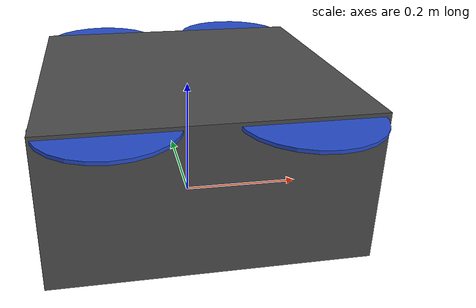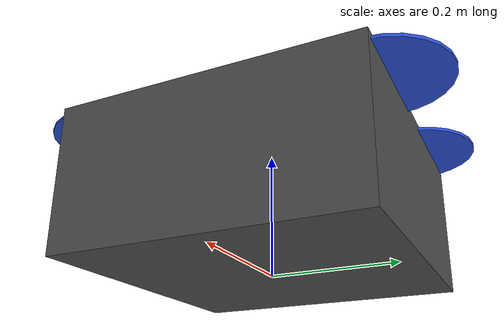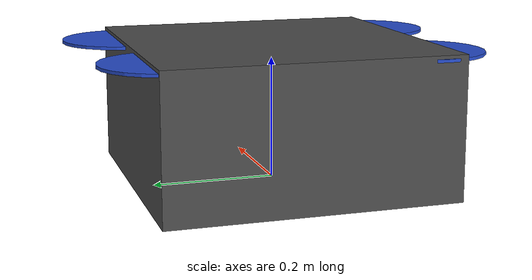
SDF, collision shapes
<?xml version='1.0'?>
<sdf version="1.6">
  <model name="iris_quadrotor_with_plugin">
    <include>
      <uri>model://iris_quadrotor</uri>
    </include>

    <!-- plugins -->
    <plugin name="rotor_0_blade_1" filename="libLiftDragPlugin.so">
      <a0>0.3</a0>
      <alpha_stall>1.4</alpha_stall>
      <cla>4.2500</cla>
      <cda>0.10</cda>
      <cma>0.00</cma>
      <cla_stall>-0.025</cla_stall>
      <cda_stall>0.0</cda_stall>
      <cma_stall>0.0</cma_stall>
      <area>0.002</area>
      <air_density>1.2041</air_density>
      <cp>0.084 0 0</cp>
      <forward>0 1 0</forward>
      <upward>0 0 1</upward>
      <link_name>iris_quadrotor::rotor_0</link_name>
    </plugin>
    <plugin name="rotor_0_blade_2" filename="libLiftDragPlugin.so">
      <a0>0.3</a0>
      <alpha_stall>1.4</alpha_stall>
      <cla>4.2500</cla>
      <cda>0.10</cda>
      <cma>0.00</cma>
      <cla_stall>-0.025</cla_stall>
      <cda_stall>0.0</cda_stall>
      <cma_stall>0.0</cma_stall>
      <area>0.002</area>
      <air_density>1.2041</air_density>
      <cp>-0.084 0 0</cp>
      <forward>0 -1 0</forward>
      <upward>0 0 1</upward>
      <link_name>iris_quadrotor::rotor_0</link_name>
    </plugin>
    <plugin name="rotor_1_blade_1" filename="libLiftDragPlugin.so">
      <a0>0.3</a0>
      <alpha_stall>1.4</alpha_stall>
      <cla>4.2500</cla>
      <cda>0.10</cda>
      <cma>0.00</cma>
      <cla_stall>-0.025</cla_stall>
      <cda_stall>0.0</cda_stall>
      <cma_stall>0.0</cma_stall>
      <area>0.002</area>
      <air_density>1.2041</air_density>
      <cp>0.084 0 0</cp>
      <forward>0 1 0</forward>
      <upward>0 0 1</upward>
      <link_name>iris_quadrotor::rotor_1</link_name>
    </plugin>
    <plugin name="rotor_1_blade_2" filename="libLiftDragPlugin.so">
      <a0>0.3</a0>
      <alpha_stall>1.4</alpha_stall>
      <cla>4.2500</cla>
      <cda>0.10</cda>
      <cma>0.00</cma>
      <cla_stall>-0.025</cla_stall>
      <cda_stall>0.0</cda_stall>
      <cma_stall>0.0</cma_stall>
      <area>0.002</area>
      <air_density>1.2041</air_density>
      <cp>-0.084 0 0</cp>
      <forward>0 -1 0</forward>
      <upward>0 0 1</upward>
      <link_name>iris_quadrotor::rotor_1</link_name>
    </plugin>
    <plugin name="rotor_2_blade_1" filename="libLiftDragPlugin.so">
      <a0>0.3</a0>
      <alpha_stall>1.4</alpha_stall>
      <cla>4.2500</cla>
      <cda>0.10</cda>
      <cma>0.00</cma>
      <cla_stall>-0.025</cla_stall>
      <cda_stall>0.0</cda_stall>
      <cma_stall>0.0</cma_stall>
      <area>0.002</area>
      <air_density>1.2041</air_density>
      <cp>0.084 0 0</cp>
      <forward>0 -1 0</forward>
      <upward>0 0 1</upward>
      <link_name>iris_quadrotor::rotor_2</link_name>
    </plugin>
    <plugin name="rotor_2_blade_2" filename="libLiftDragPlugin.so">
      <a0>0.3</a0>
      <alpha_stall>1.4</alpha_stall>
      <cla>4.2500</cla>
      <cda>0.10</cda>
      <cma>0.00</cma>
      <cla_stall>-0.025</cla_stall>
      <cda_stall>0.0</cda_stall>
      <cma_stall>0.0</cma_stall>
      <area>0.002</area>
      <air_density>1.2041</air_density>
      <cp>-0.084 0 0</cp>
      <forward>0 1 0</forward>
      <upward>0 0 1</upward>
      <link_name>iris_quadrotor::rotor_2</link_name>
    </plugin>
    <plugin name="rotor_3_blade_1" filename="libLiftDragPlugin.so">
      <a0>0.3</a0>
      <alpha_stall>1.4</alpha_stall>
      <cla>4.2500</cla>
      <cda>0.10</cda>
      <cma>0.00</cma>
      <cla_stall>-0.025</cla_stall>
      <cda_stall>0.0</cda_stall>
      <cma_stall>0.0</cma_stall>
      <area>0.002</area>
      <air_density>1.2041</air_density>
      <cp>0.084 0 0</cp>
      <forward>0 -1 0</forward>
      <upward>0 0 1</upward>
      <link_name>iris_quadrotor::rotor_3</link_name>
    </plugin>
    <plugin name="rotor_3_blade_2" filename="libLiftDragPlugin.so">
      <a0>0.3</a0>
      <alpha_stall>1.4</alpha_stall>
      <cla>4.2500</cla>
      <cda>0.10</cda>
      <cma>0.00</cma>
      <cla_stall>-0.025</cla_stall>
      <cda_stall>0.0</cda_stall>
      <cma_stall>0.0</cma_stall>
      <area>0.002</area>
      <air_density>1.2041</air_density>
      <cp>-0.084 0 0</cp>
      <forward>0 1 0</forward>
      <upward>0 0 1</upward>
      <link_name>iris_quadrotor::rotor_3</link_name>
    </plugin>
    <plugin name="iris_controller" filename="libiris_controller.so">
      <rotor id="0">
        <vel_p_gain>0.1</vel_p_gain>
        <vel_i_gain>0</vel_i_gain>
        <vel_d_gain>0</vel_d_gain>
        <vel_i_max>0</vel_i_max>
        <vel_i_min>0</vel_i_min>
        <vel_cmd_max>3.0</vel_cmd_max>
        <vel_cmd_min>-3.0</vel_cmd_min>
        <jointName>iris_quadrotor::rotor_0_joint</jointName>
        <turningDirection>ccw</turningDirection>
        <rotorVelocitySlowdownSim>1</rotorVelocitySlowdownSim>
      </rotor>
      <rotor id="1">
        <vel_p_gain>0.1</vel_p_gain>
        <vel_i_gain>0</vel_i_gain>
        <vel_d_gain>0</vel_d_gain>
        <vel_i_max>0</vel_i_max>
        <vel_i_min>0</vel_i_min>
        <vel_cmd_max>3.0</vel_cmd_max>
        <vel_cmd_min>-3.0</vel_cmd_min>
        <jointName>iris_quadrotor::rotor_1_joint</jointName>
        <turningDirection>ccw</turningDirection>
        <rotorVelocitySlowdownSim>1</rotorVelocitySlowdownSim>
      </rotor>
      <rotor id="2">
        <vel_p_gain>0.1</vel_p_gain>
        <vel_i_gain>0</vel_i_gain>
        <vel_d_gain>0</vel_d_gain>
        <vel_i_max>0</vel_i_max>
        <vel_i_min>0</vel_i_min>
        <vel_cmd_max>3.0</vel_cmd_max>
        <vel_cmd_min>-3.0</vel_cmd_min>
        <jointName>iris_quadrotor::rotor_2_joint</jointName>
        <turningDirection>cw</turningDirection>
        <rotorVelocitySlowdownSim>1</rotorVelocitySlowdownSim>
      </rotor>
      <rotor id="3">
        <vel_p_gain>0.1</vel_p_gain>
        <vel_i_gain>0</vel_i_gain>
        <vel_d_gain>0</vel_d_gain>
        <vel_i_max>0</vel_i_max>
        <vel_i_min>0</vel_i_min>
        <vel_cmd_max>3.0</vel_cmd_max>
        <vel_cmd_min>-3.0</vel_cmd_min>
        <jointName>iris_quadrotor::rotor_3_joint</jointName>
        <turningDirection>cw</turningDirection>
        <rotorVelocitySlowdownSim>1</rotorVelocitySlowdownSim>
      </rotor>
      <!-- the pose publish cycle in miliseconds -->
      <!-- if 100, publishes pose every 100 miliseconds -->
      <!-- value must be int -->
      <poseUpdateRate>10</poseUpdateRate>
      <uav_sensor>
        <update_rate>10</update_rate>
        <hfov>0.5</hfov>
        <aspect_ratio>1.3333</aspect_ratio>
        <max_height>1000</max_height>
        <min_height>10</min_height>
        <far>1000</far>
        <near>0.1</near>
      </uav_sensor>
      <battery>
        <capacity>1000</capacity>
        <force_factor>0.0003</force_factor>
        <!-- determines how often remaining battery is going to be published -->
        <!-- every publish_rate millisecond -->
        <publish_rate>1000</publish_rate>
      </battery>
    </plugin>
  </model>
</sdf>

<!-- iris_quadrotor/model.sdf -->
<sdf version='1.5'>
  <model name='iris_quadrotor'>
    <pose>0 0 0.194923 0 0 0</pose>
    <link name='base_link'>
      <velocity_decay>
        <linear>0.0</linear>
        <angular>0.0</angular>
      </velocity_decay>
      <inertial>
        <pose>0 0 0 0 0 0</pose>
        <mass>1.5</mass>
        <inertia>
          <ixx>0.008</ixx>
          <ixy>0</ixy>
          <ixz>0</ixz>
          <iyy>0.015</iyy>
          <iyz>0</iyz>
          <izz>0.017</izz>
        </inertia>
      </inertial>
      <collision name='base_link_collision'>
        <pose>0 0 -0.08 0 0 0</pose>
        <geometry>
          <box>
            <size>0.47 0.47 0.23</size>
          </box>
        </geometry>
        <surface>
          <contact>
            <ode>
              <max_vel>100.0</max_vel>
              <min_depth>0.001</min_depth>
            </ode>
          </contact>
          <friction>
            <ode>
              <mu>1.0</mu>
              <mu2>1.0</mu2>
            </ode>
          </friction>
        </surface>
      </collision>
      <visual name='base_link_visual'>
        <geometry>
          <mesh>
            <uri>model://iris_quadrotor/meshes/iris.dae</uri>
          </mesh>
        </geometry>
        <material>
          <script>
            <name>Gazebo/DarkGrey</name>
          </script>
        </material>
      </visual>

      <visual name='front_left_leg_visual'>
        <pose>0.123 0.22 -0.11 0 0 0</pose>
        <geometry>
          <cylinder>
            <radius>0.005</radius>
            <length>0.17</length>
          </cylinder>
        </geometry>
        <material>
          <script>
            <name>Gazebo/FlatBlack</name>
            <uri>file://media/materials/scripts/gazebo.material</uri>
          </script>
        </material>
      </visual>
      <visual name='front_right_leg_visual'>
        <pose>0.123 -0.22 -0.11 0 0 0</pose>
        <geometry>
          <cylinder>
            <radius>0.005</radius>
            <length>0.17</length>
          </cylinder>
        </geometry>
        <material>
          <script>
            <name>Gazebo/FlatBlack</name>
            <uri>file://media/materials/scripts/gazebo.material</uri>
          </script>
        </material>
      </visual>
      <visual name='rear_left_leg_visual'>
        <pose>-0.140 0.21 -0.11 0 0 0</pose>
        <geometry>
          <cylinder>
            <radius>0.005</radius>
            <length>0.17</length>
          </cylinder>
        </geometry>
        <material>
          <script>
            <name>Gazebo/FlatBlack</name>
            <uri>file://media/materials/scripts/gazebo.material</uri>
          </script>
        </material>
      </visual>
      <visual name='rear_right_leg_visual'>
        <pose>-0.140 -0.21 -0.11 0 0 0</pose>
        <geometry>
          <cylinder>
            <radius>0.005</radius>
            <length>0.17</length>
          </cylinder>
        </geometry>
        <material>
          <script>
            <name>Gazebo/FlatBlack</name>
            <uri>file://media/materials/scripts/gazebo.material</uri>
          </script>
        </material>
      </visual>
      <sensor name="bottom_cam" type="camera">
        <pose>0 0 0 0 1.5707 -1.5707</pose>
        <camera>
          <horizontal_fov>0.5</horizontal_fov>
          <image>
            <width>800</width>
            <height>600</height>
          </image>
          <clip>
            <near>0.1</near>
            <far>100</far>
          </clip>
        </camera>
        <always_on>false</always_on>
        <update_rate>10</update_rate>
        <visualize>false</visualize>
      </sensor>
      <sensor name="bottom_cam_logical" type="logical_camera">
        <pose>0 0 0 0 1.5707 -1.5707</pose>
        <logical_camera>
          <near>0.1</near>
          <far>500</far>
          <horizontal_fov>0.5</horizontal_fov>
          <aspect_ratio>1.3333</aspect_ratio>
        </logical_camera>
        <always_on>false</always_on>
        <update_rate>10</update_rate>
        <visualize>true</visualize>
      </sensor>
    </link>
    <link name='rotor_0'>
      <pose>0.1295 -0.2185 0.027 0 -0 0</pose>
      <inertial>
        <pose>-0.0045 -0.0005 0 0 0 0</pose>
        <mass>0.025</mass>
        <inertia>
          <ixx>9.75e-06</ixx>
          <ixy>0</ixy>
          <ixz>0</ixz>
          <iyy>0.000166704</iyy>
          <iyz>0</iyz>
          <izz>0.000167604</izz>
        </inertia>
      </inertial>
      <collision name='rotor_0_collision'>
        <pose>0 0 0 0 -0 0</pose>
        <geometry>
          <cylinder>
            <length>0.005</length>
            <radius>0.1</radius>
          </cylinder>
        </geometry>
        <surface>
          <contact>
            <ode/>
          </contact>
          <friction>
            <ode/>
          </friction>
        </surface>
      </collision>
      <visual name='rotor_0_visual'>
        <pose>0 0 0 0 -0 0</pose>
        <geometry>
          <mesh>
            <scale>1 1 1</scale>
            <uri>model://iris_quadrotor/meshes/iris_prop_ccw.dae</uri>
          </mesh>
        </geometry>
        <material>
          <script>
            <name>Gazebo/Blue</name>
            <uri>__default__</uri>
          </script>
        </material>
      </visual>
      <gravity>1</gravity>
      <velocity_decay/>
      <self_collide>0</self_collide>
    </link>
    <joint name='rotor_0_joint' type='revolute'>
      <child>rotor_0</child>
      <parent>base_link</parent>
      <pose>-0.0045 -0.0005 0 0 0 0</pose>
      <axis>
        <xyz>0 0 1</xyz>
        <limit>
          <lower>-1e+16</lower>
          <upper>1e+16</upper>
        </limit>
        <dynamics>
          <damping>0.004</damping>
        </dynamics>
        <use_parent_model_frame>1</use_parent_model_frame>
      </axis>
      <physics>
        <ode>
          <implicit_spring_damper>1</implicit_spring_damper>
        </ode>
      </physics>
    </joint>
    <link name='rotor_1'>
      <pose>-0.134 0.2065 0.027 0 -0 0</pose>
      <inertial>
        <pose>-0.0045 -0.0001 0 0 0 0</pose>
        <mass>0.025</mass>
        <inertia>
          <ixx>9.75e-06</ixx>
          <ixy>0</ixy>
          <ixz>0</ixz>
          <iyy>0.000166704</iyy>
          <iyz>0</iyz>
          <izz>0.000167604</izz>
        </inertia>
      </inertial>
      <collision name='rotor_1_collision'>
        <pose>0 0 0 0 -0 0</pose>
        <geometry>
          <cylinder>
            <length>0.005</length>
            <radius>0.1</radius>
          </cylinder>
        </geometry>
        <surface>
          <contact>
            <ode/>
          </contact>
          <friction>
            <ode/>
          </friction>
        </surface>
      </collision>
      <visual name='rotor_1_visual'>
        <pose>0 0 0 0 -0 0</pose>
        <geometry>
          <mesh>
            <scale>1 1 1</scale>
            <uri>model://iris_quadrotor/meshes/iris_prop_ccw.dae</uri>
          </mesh>
        </geometry>
        <material>
          <script>
            <name>Gazebo/Blue</name>
            <uri>__default__</uri>
          </script>
        </material>
      </visual>
      <gravity>1</gravity>
      <velocity_decay/>
      <self_collide>0</self_collide>
    </link>
    <joint name='rotor_1_joint' type='revolute'>
      <child>rotor_1</child>
      <parent>base_link</parent>
      <pose>-0.0045 -0.0001 0 0 0 0</pose>
      <axis>
        <xyz>0 0 1</xyz>
        <limit>
          <lower>-1e+16</lower>
          <upper>1e+16</upper>
        </limit>
        <dynamics>
          <damping>0.004</damping>
        </dynamics>
        <use_parent_model_frame>1</use_parent_model_frame>
      </axis>
      <physics>
        <ode>
          <implicit_spring_damper>1</implicit_spring_damper>
        </ode>
      </physics>
    </joint>
    <link name='rotor_2'>
      <pose>0.1255 0.2223 0.027 0 -0 0</pose>
      <inertial>
        <pose>-0.0004 0.0002 0 0 0 0</pose>
        <mass>0.025</mass>
        <inertia>
          <ixx>9.75e-06</ixx>
          <ixy>0</ixy>
          <ixz>0</ixz>
          <iyy>0.000166704</iyy>
          <iyz>0</iyz>
          <izz>0.000167604</izz>
        </inertia>
      </inertial>
      <collision name='rotor_2_collision'>
        <pose>0 0 0 0 -0 0</pose>
        <geometry>
          <cylinder>
            <length>0.005</length>
            <radius>0.1</radius>
          </cylinder>
        </geometry>
        <surface>
          <contact>
            <ode/>
          </contact>
          <friction>
            <ode/>
          </friction>
        </surface>
      </collision>
      <visual name='rotor_2_visual'>
        <pose>0 0 0 0 -0 0</pose>
        <geometry>
          <mesh>
            <scale>1 1 1</scale>
            <uri>model://iris_quadrotor/meshes/iris_prop_cw.dae</uri>
          </mesh>
        </geometry>
        <material>
          <script>
            <name>Gazebo/Blue</name>
            <uri>__default__</uri>
          </script>
        </material>
      </visual>
      <gravity>1</gravity>
      <velocity_decay/>
      <self_collide>0</self_collide>
    </link>
    <joint name='rotor_2_joint' type='revolute'>
      <child>rotor_2</child>
      <parent>base_link</parent>
      <pose>-0.0004 0.0002 0 0 0 0</pose>
      <axis>
        <xyz>0 0 1</xyz>
        <limit>
          <lower>-1e+16</lower>
          <upper>1e+16</upper>
        </limit>
        <dynamics>
          <damping>0.004</damping>
        </dynamics>
        <use_parent_model_frame>1</use_parent_model_frame>
      </axis>
      <physics>
        <ode>
          <implicit_spring_damper>1</implicit_spring_damper>
        </ode>
      </physics>
    </joint>
    <link name='rotor_3'>
      <pose>-0.1375 -0.2025 0.027 0 -0 0</pose>
      <inertial>
        <pose>-0.001 0 0 0 0 0</pose>
        <mass>0.025</mass>
        <inertia>
          <ixx>9.75e-06</ixx>
          <ixy>0</ixy>
          <ixz>0</ixz>
          <iyy>0.000166704</iyy>
          <iyz>0</iyz>
          <izz>0.000167604</izz>
        </inertia>
      </inertial>
      <collision name='rotor_3_collision'>
        <pose>0 0 0 0 -0 0</pose>
        <geometry>
          <cylinder>
            <length>0.005</length>
            <radius>0.1</radius>
          </cylinder>
        </geometry>
        <surface>
          <contact>
            <ode/>
          </contact>
          <friction>
            <ode/>
          </friction>
        </surface>
      </collision>
      <visual name='rotor_3_visual'>
        <pose>0 0 0 0 -0 0</pose>
        <geometry>
          <mesh>
            <scale>1 1 1</scale>
            <uri>model://iris_quadrotor/meshes/iris_prop_cw.dae</uri>
          </mesh>
        </geometry>
        <material>
          <script>
            <name>Gazebo/Blue</name>
            <uri>__default__</uri>
          </script>
        </material>
      </visual>
      <gravity>1</gravity>
      <velocity_decay/>
      <self_collide>0</self_collide>
    </link>
    <joint name='rotor_3_joint' type='revolute'>
      <child>rotor_3</child>
      <parent>base_link</parent>
      <pose>-0.001 0 0 0 0 0</pose>
      <axis>
        <xyz>0 0 1</xyz>
        <limit>
          <lower>-1e+16</lower>
          <upper>1e+16</upper>
        </limit>
        <dynamics>
          <damping>0.004</damping>
        </dynamics>
        <use_parent_model_frame>1</use_parent_model_frame>
      </axis>
      <physics>
        <ode>
          <implicit_spring_damper>1</implicit_spring_damper>
        </ode>
      </physics>
    </joint>
    <static>0</static>
  </model>
</sdf>
